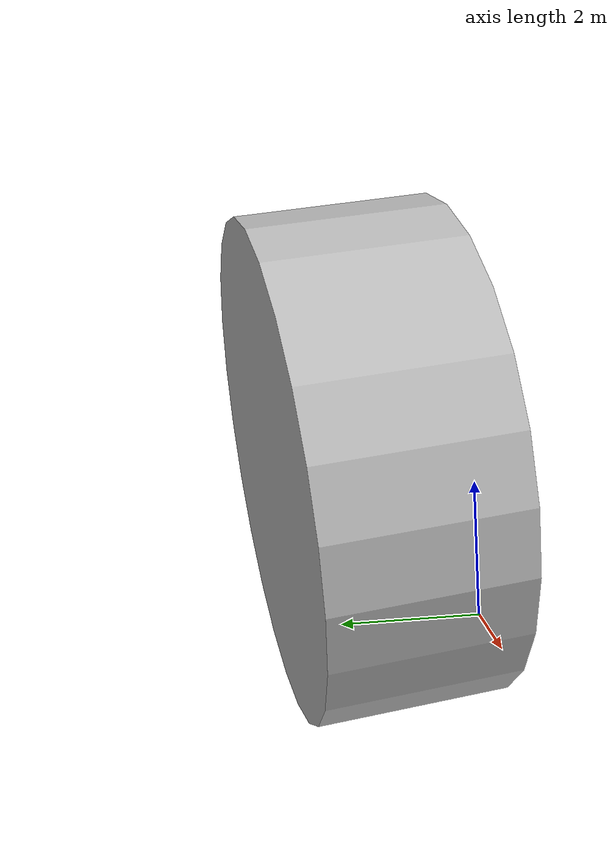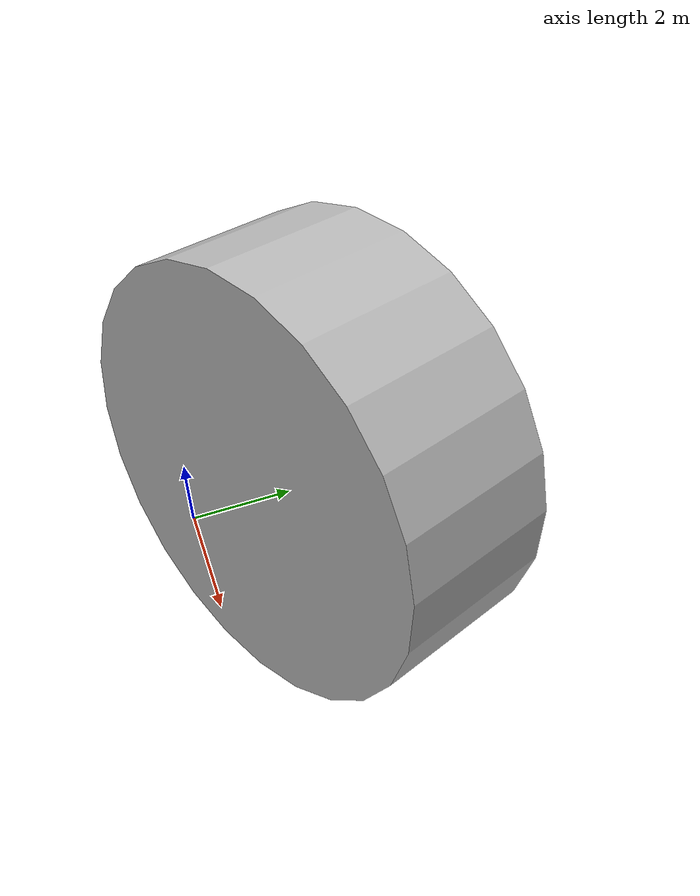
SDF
<?xml version="1.0" ?>
<sdf version="1.4">
	<model name="model1">
		<link name="link-1">
			<pose>2 3 4 3 4 5</pose>
			<inertial>
				<inertia>
					<ixx>1</ixx>
					<iyy>2</iyy>
					<izz>3</izz>
				</inertia>
				<mass>4</mass>
			</inertial>
			<collision name="cyl_col">
				<geometry>
					<cylinder>
						<radius>0.5</radius>
						<length>0.9</length>
					</cylinder>
				</geometry>
			</collision>
			<visual name="cyl_vis">
				<geometry>
					<cylinder>
						<radius>0.5</radius>
						<length>0.9</length>
					</cylinder>
				</geometry>
			</visual>
		</link>
		<link name="RectLink">
			<pose>1 2 3 1 2 3</pose>
			<inertial>
				<inertia>
					<ixx>1</ixx>
					<iyy>2</iyy>
					<izz>3</izz>
				</inertia>
				<mass>3</mass>
			</inertial>
			<visual name="RectLink_vis">
				<geometry>
					<box>
						<length>1 2 3</length>
					</box>
				</geometry>
			</visual>
			<collision name="RectLink_col">
				<geometry>
					<box>
						<length>1 2 3</length>
					</box>
				</geometry>
			</collision>
		</link>
		<link name="CylLink">
			<pose>1 2 3 1 2 3</pose>
			<inertial>
				<inertia>
					<ixx>1</ixx>
					<iyy>2</iyy>
					<izz>3</izz>
				</inertia>
				<mass>4</mass>
			</inertial>
			<visual name="CylLink_vis">
				<geometry>
					<cylinder>
						<radius>4</radius>
						<length>3</length>
					</cylinder>
				</geometry>
			</visual>
			<collision name="CylLink_col">
				<geometry>
					<cylinder>
						<radius>4</radius>
						<length>3</length>
					</cylinder>
				</geometry>
			</collision>
		</link>
		<joint name="joint1">
			<pose>1 2 3 1 2 3</pose>
			<child>RectLink</child>
			<parent>CyLlink</parent>
			<axis>
				<xyz>1 2 3</xyz>
				<dynamics>
					<friction>1</friction>
					<damping>.1</damping>
				</dynamics>
				<limit>
					<upper>1</upper>
					<lower>1</lower>
				</limit>
			</axis>
		</joint>
	</model>
</sdf>
